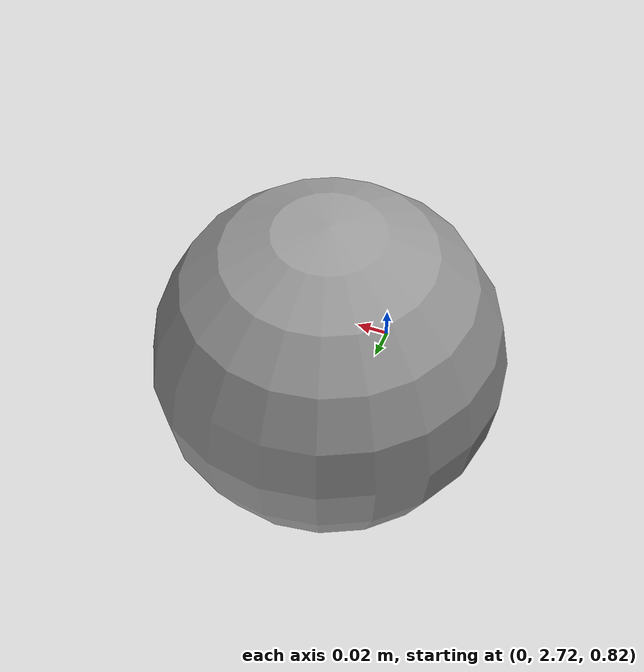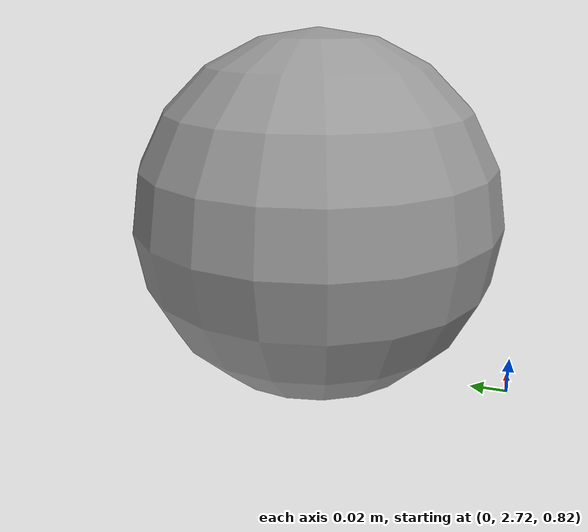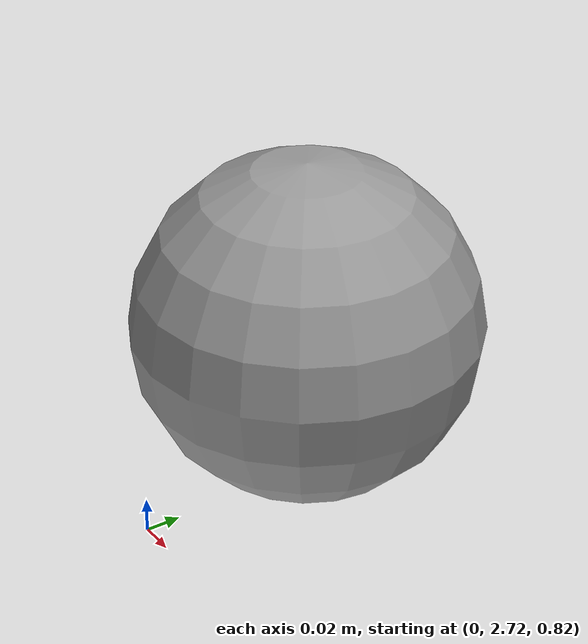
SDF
<?xml version='1.0'?>
<sdf version='1.6'>
  <model name='my_ball1'>
    <link name='link_0'>
      <pose frame=''>-0.003232 2.82829 0.91598 0 -0 0</pose>
      <inertial>
        <mass>1</mass>
        <inertia>
          <ixx>0.1</ixx>
          <ixy>0</ixy>
          <ixz>0</ixz>
          <iyy>0.1</iyy>
          <iyz>0</iyz>
          <izz>0.1</izz>
        </inertia>
        <pose frame=''>0 0 0 0 -0 0</pose>
      </inertial>
      <gravity>1</gravity>
      <self_collide>0</self_collide>
      <kinematic>0</kinematic>
      <visual name='visual'>
        <pose frame=''>0 0 0 0 -0 0</pose>
        <geometry>
          <sphere>
            <radius>0.1</radius>
          </sphere>
        </geometry>
        <material>
          <lighting>1</lighting>
          <script>
            <uri>file://media/materials/scripts/gazebo.material</uri>
            <name>Gazebo/Grey</name>
          </script>
          <shader type='pixel'>
            <normal_map>__default__</normal_map>
          </shader>
          <ambient>1 1 1 1</ambient>
          <diffuse>1 1 1 1</diffuse>
          <specular>1 1 1 1</specular>
          <emissive>1 1 1 1</emissive>
        </material>
        <transparency>0</transparency>
        <cast_shadows>1</cast_shadows>
      </visual>
      <collision name='collision'>
        <laser_retro>0</laser_retro>
        <max_contacts>10</max_contacts>
        <pose frame=''>0 0 0 0 -0 0</pose>
        <geometry>
          <sphere>
            <radius>0.1</radius>
          </sphere>
        </geometry>
        <surface>
          <friction>
            <ode>
              <mu>1</mu>
              <mu2>1</mu2>
              <fdir1>0 0 0</fdir1>
              <slip1>0</slip1>
              <slip2>0</slip2>
            </ode>
            <torsional>
              <coefficient>1</coefficient>
              <patch_radius>0</patch_radius>
              <surface_radius>0</surface_radius>
              <use_patch_radius>1</use_patch_radius>
              <ode>
                <slip>0</slip>
              </ode>
            </torsional>
          </friction>
          <bounce>
            <restitution_coefficient>0</restitution_coefficient>
            <threshold>1e+06</threshold>
          </bounce>
          <contact>
            <collide_without_contact>0</collide_without_contact>
            <collide_without_contact_bitmask>1</collide_without_contact_bitmask>
            <collide_bitmask>1</collide_bitmask>
            <ode>
              <soft_cfm>0</soft_cfm>
              <soft_erp>0.2</soft_erp>
              <kp>1e+13</kp>
              <kd>1</kd>
              <max_vel>0.01</max_vel>
              <min_depth>0</min_depth>
            </ode>
            <bullet>
              <split_impulse>1</split_impulse>
              <split_impulse_penetration_threshold>-0.01</split_impulse_penetration_threshold>
              <soft_cfm>0</soft_cfm>
              <soft_erp>0.2</soft_erp>
              <kp>1e+13</kp>
              <kd>1</kd>
            </bullet>
          </contact>
        </surface>
      </collision>
    </link>
    <model name='my_ball'>
      <static>0</static>
      <allow_auto_disable>1</allow_auto_disable>
      <pose frame=''>1.12851 3.07313 -0.20799 0 -0 0</pose>
    </model>
    <model name='my_ball_0'>
      <static>0</static>
      <allow_auto_disable>1</allow_auto_disable>
      <pose frame=''>0.941976 3.50604 0.04201 0 -0 0</pose>
    </model>
    <static>0</static>
    <allow_auto_disable>1</allow_auto_disable>
  </model>
</sdf>
